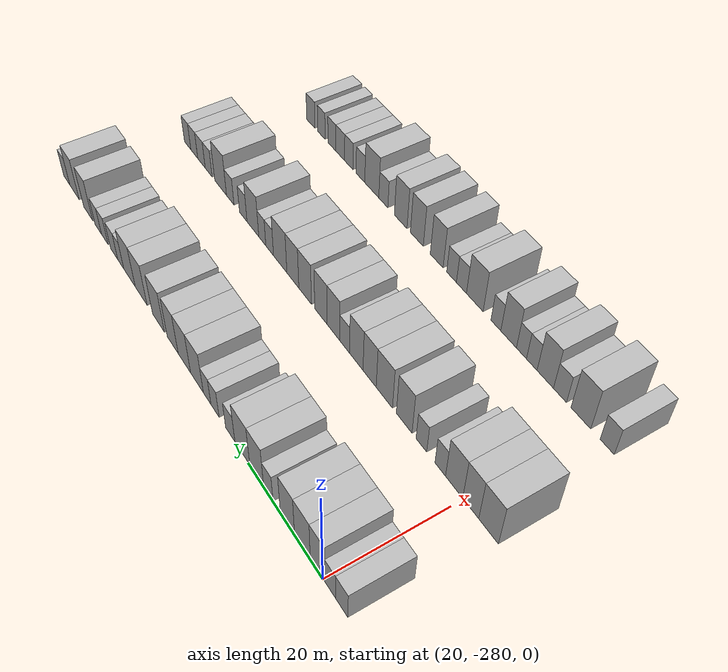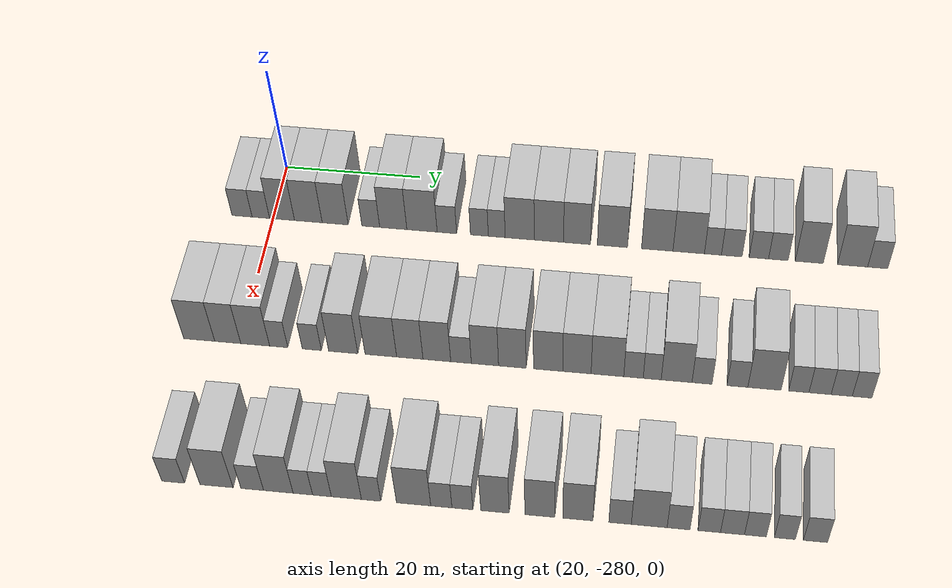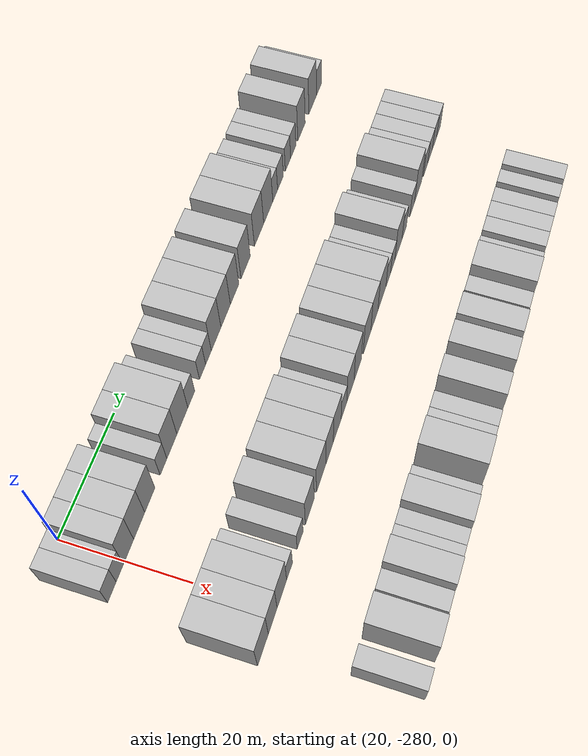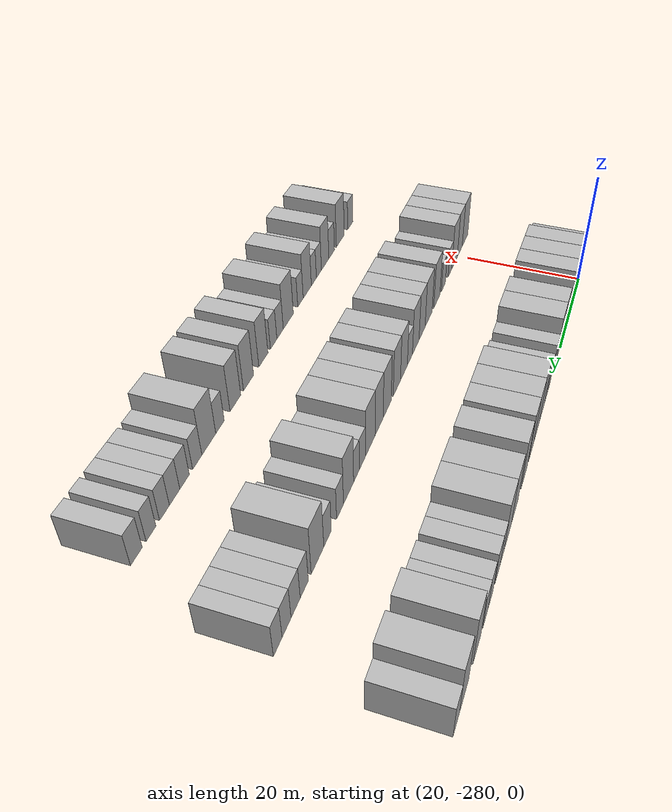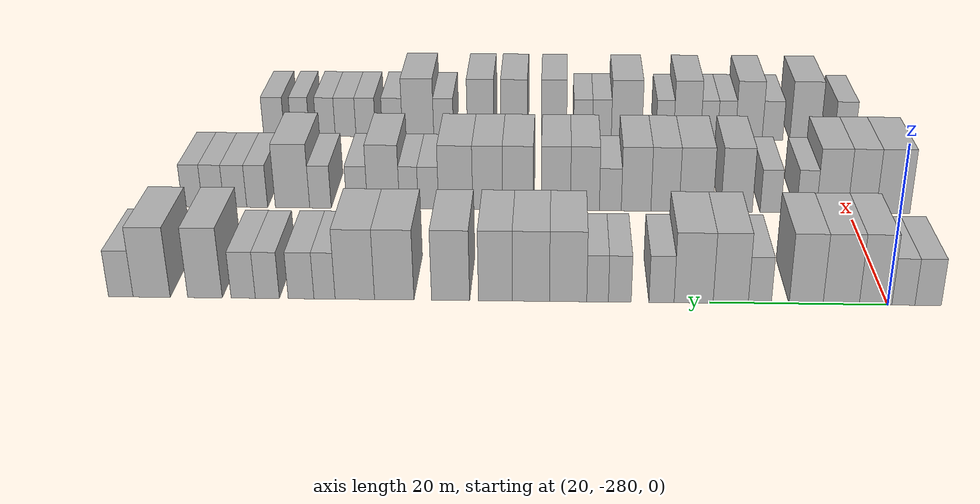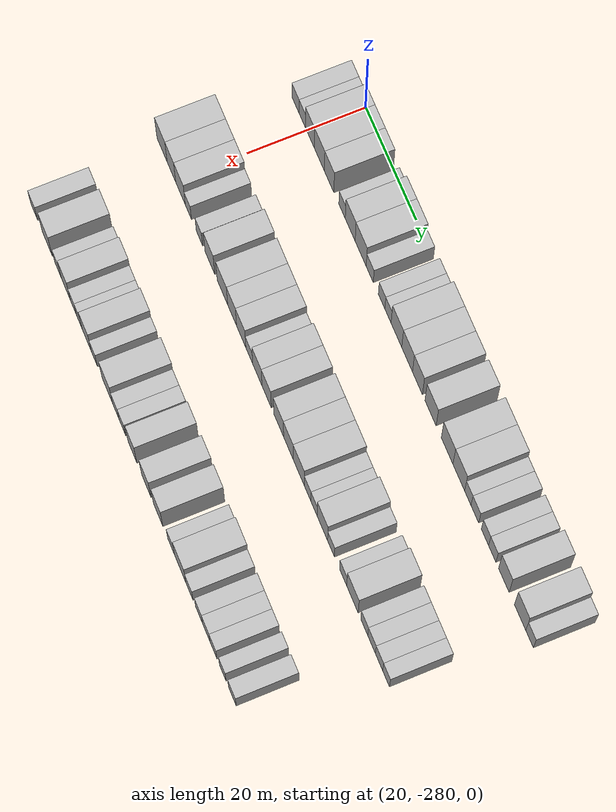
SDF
<sdf version="1.6">
 <world name="default">
  <model name="building_24">
   <static>1</static>
   <pose>25.0000 -284.5112 0 0.000000 0.000000 0.000000</pose>
   <link name="link">
    <pose>0 0 3.00 0 0 0</pose>
    <collision name="collision"><geometry><box><size>10.0000 2.9608 6.0000</size></box></geometry></collision>
    <visual name="visual">
     <cast_shadows>0</cast_shadows>
     <geometry><box><size>10.0000 2.9608 6.0000</size></box></geometry>
     <material>
      <script>
       <uri>model://HANNAS_wall/materials/scripts</uri>
       <uri>model://HANNAS_wall/materials/textures</uri>
       <name>vrc/HANNAS_wall</name>
      </script>
     </material>
    </visual>
   </link>
  </model>
  <model name="building_25">
   <static>1</static>
   <pose>25.0000 -281.7417 0 0.000000 0.000000 0.000000</pose>
   <link name="link">
    <pose>0 0 3.00 0 0 0</pose>
    <collision name="collision"><geometry><box><size>10.0000 2.5782 6.0000</size></box></geometry></collision>
    <visual name="visual">
     <cast_shadows>0</cast_shadows>
     <geometry><box><size>10.0000 2.5782 6.0000</size></box></geometry>
     <material>
      <script>
       <uri>model://HANNAS_wall/materials/scripts</uri>
       <uri>model://HANNAS_wall/materials/textures</uri>
       <name>vrc/HANNAS_wall</name>
      </script>
     </material>
    </visual>
   </link>
  </model>
  <model name="building_26">
   <static>1</static>
   <pose>25.0000 -278.6210 0 0.000000 0.000000 0.000000</pose>
   <link name="link">
    <pose>0 0 4.50 0 0 0</pose>
    <collision name="collision"><geometry><box><size>10.0000 3.6632 9.0000</size></box></geometry></collision>
    <visual name="visual">
     <cast_shadows>0</cast_shadows>
     <geometry><box><size>10.0000 3.6632 9.0000</size></box></geometry>
     <material>
      <script>
       <uri>model://HANNAS_wall/materials/scripts</uri>
       <uri>model://HANNAS_wall/materials/textures</uri>
       <name>vrc/HANNAS_wall</name>
      </script>
     </material>
    </visual>
   </link>
  </model>
  <model name="building_27">
   <static>1</static>
   <pose>25.0000 -274.7583 0 0.000000 0.000000 0.000000</pose>
   <link name="link">
    <pose>0 0 4.50 0 0 0</pose>
    <collision name="collision"><geometry><box><size>10.0000 4.0623 9.0000</size></box></geometry></collision>
    <visual name="visual">
     <cast_shadows>0</cast_shadows>
     <geometry><box><size>10.0000 4.0623 9.0000</size></box></geometry>
     <material>
      <script>
       <uri>model://HANNAS_wall/materials/scripts</uri>
       <uri>model://HANNAS_wall/materials/textures</uri>
       <name>vrc/HANNAS_wall</name>
      </script>
     </material>
    </visual>
   </link>
  </model>
  <model name="building_28">
   <static>1</static>
   <pose>25.0000 -270.8224 0 0.000000 0.000000 0.000000</pose>
   <link name="link">
    <pose>0 0 4.50 0 0 0</pose>
    <collision name="collision"><geometry><box><size>10.0000 3.8095 9.0000</size></box></geometry></collision>
    <visual name="visual">
     <cast_shadows>0</cast_shadows>
     <geometry><box><size>10.0000 3.8095 9.0000</size></box></geometry>
     <material>
      <script>
       <uri>model://HANNAS_wall/materials/scripts</uri>
       <uri>model://HANNAS_wall/materials/textures</uri>
       <name>vrc/HANNAS_wall</name>
      </script>
     </material>
    </visual>
   </link>
  </model>
  <model name="building_29">
   <static>1</static>
   <pose>25.0000 -265.6173 0 0.000000 0.000000 0.000000</pose>
   <link name="link">
    <pose>0 0 3.00 0 0 0</pose>
    <collision name="collision"><geometry><box><size>10.0000 2.6008 6.0000</size></box></geometry></collision>
    <visual name="visual">
     <cast_shadows>0</cast_shadows>
     <geometry><box><size>10.0000 2.6008 6.0000</size></box></geometry>
     <material>
      <script>
       <uri>model://HANNAS_wall/materials/scripts</uri>
       <uri>model://HANNAS_wall/materials/textures</uri>
       <name>vrc/HANNAS_wall</name>
      </script>
     </material>
    </visual>
   </link>
  </model>
  <model name="building_30">
   <static>1</static>
   <pose>25.0000 -262.3376 0 0.000000 0.000000 0.000000</pose>
   <link name="link">
    <pose>0 0 4.50 0 0 0</pose>
    <collision name="collision"><geometry><box><size>10.0000 3.9587 9.0000</size></box></geometry></collision>
    <visual name="visual">
     <cast_shadows>0</cast_shadows>
     <geometry><box><size>10.0000 3.9587 9.0000</size></box></geometry>
     <material>
      <script>
       <uri>model://HANNAS_wall/materials/scripts</uri>
       <uri>model://HANNAS_wall/materials/textures</uri>
       <name>vrc/HANNAS_wall</name>
      </script>
     </material>
    </visual>
   </link>
  </model>
  <model name="building_31">
   <static>1</static>
   <pose>25.0000 -258.1573 0 0.000000 0.000000 0.000000</pose>
   <link name="link">
    <pose>0 0 4.50 0 0 0</pose>
    <collision name="collision"><geometry><box><size>10.0000 4.4019 9.0000</size></box></geometry></collision>
    <visual name="visual">
     <cast_shadows>0</cast_shadows>
     <geometry><box><size>10.0000 4.4019 9.0000</size></box></geometry>
     <material>
      <script>
       <uri>model://HANNAS_wall/materials/scripts</uri>
       <uri>model://HANNAS_wall/materials/textures</uri>
       <name>vrc/HANNAS_wall</name>
      </script>
     </material>
    </visual>
   </link>
  </model>
  <model name="building_32">
   <static>1</static>
   <pose>25.0000 -254.5418 0 0.000000 0.000000 0.000000</pose>
   <link name="link">
    <pose>0 0 3.00 0 0 0</pose>
    <collision name="collision"><geometry><box><size>10.0000 2.8291 6.0000</size></box></geometry></collision>
    <visual name="visual">
     <cast_shadows>0</cast_shadows>
     <geometry><box><size>10.0000 2.8291 6.0000</size></box></geometry>
     <material>
      <script>
       <uri>model://HANNAS_wall/materials/scripts</uri>
       <uri>model://HANNAS_wall/materials/textures</uri>
       <name>vrc/HANNAS_wall</name>
      </script>
     </material>
    </visual>
   </link>
  </model>
  <model name="building_33">
   <static>1</static>
   <pose>25.0000 -249.8364 0 0.000000 0.000000 0.000000</pose>
   <link name="link">
    <pose>0 0 3.00 0 0 0</pose>
    <collision name="collision"><geometry><box><size>10.0000 2.5818 6.0000</size></box></geometry></collision>
    <visual name="visual">
     <cast_shadows>0</cast_shadows>
     <geometry><box><size>10.0000 2.5818 6.0000</size></box></geometry>
     <material>
      <script>
       <uri>model://HANNAS_wall/materials/scripts</uri>
       <uri>model://HANNAS_wall/materials/textures</uri>
       <name>vrc/HANNAS_wall</name>
      </script>
     </material>
    </visual>
   </link>
  </model>
  <model name="building_34">
   <static>1</static>
   <pose>25.0000 -247.3250 0 0.000000 0.000000 0.000000</pose>
   <link name="link">
    <pose>0 0 3.00 0 0 0</pose>
    <collision name="collision"><geometry><box><size>10.0000 2.4410 6.0000</size></box></geometry></collision>
    <visual name="visual">
     <cast_shadows>0</cast_shadows>
     <geometry><box><size>10.0000 2.4410 6.0000</size></box></geometry>
     <material>
      <script>
       <uri>model://HANNAS_wall/materials/scripts</uri>
       <uri>model://HANNAS_wall/materials/textures</uri>
       <name>vrc/HANNAS_wall</name>
      </script>
     </material>
    </visual>
   </link>
  </model>
  <model name="building_35">
   <static>1</static>
   <pose>25.0000 -244.0045 0 0.000000 0.000000 0.000000</pose>
   <link name="link">
    <pose>0 0 4.50 0 0 0</pose>
    <collision name="collision"><geometry><box><size>10.0000 4.1999 9.0000</size></box></geometry></collision>
    <visual name="visual">
     <cast_shadows>0</cast_shadows>
     <geometry><box><size>10.0000 4.1999 9.0000</size></box></geometry>
     <material>
      <script>
       <uri>model://HANNAS_wall/materials/scripts</uri>
       <uri>model://HANNAS_wall/materials/textures</uri>
       <name>vrc/HANNAS_wall</name>
      </script>
     </material>
    </visual>
   </link>
  </model>
  <model name="building_36">
   <static>1</static>
   <pose>25.0000 -239.8030 0 0.000000 0.000000 0.000000</pose>
   <link name="link">
    <pose>0 0 4.50 0 0 0</pose>
    <collision name="collision"><geometry><box><size>10.0000 4.2031 9.0000</size></box></geometry></collision>
    <visual name="visual">
     <cast_shadows>0</cast_shadows>
     <geometry><box><size>10.0000 4.2031 9.0000</size></box></geometry>
     <material>
      <script>
       <uri>model://HANNAS_wall/materials/scripts</uri>
       <uri>model://HANNAS_wall/materials/textures</uri>
       <name>vrc/HANNAS_wall</name>
      </script>
     </material>
    </visual>
   </link>
  </model>
  <model name="building_37">
   <static>1</static>
   <pose>25.0000 -235.7742 0 0.000000 0.000000 0.000000</pose>
   <link name="link">
    <pose>0 0 4.50 0 0 0</pose>
    <collision name="collision"><geometry><box><size>10.0000 3.8545 9.0000</size></box></geometry></collision>
    <visual name="visual">
     <cast_shadows>0</cast_shadows>
     <geometry><box><size>10.0000 3.8545 9.0000</size></box></geometry>
     <material>
      <script>
       <uri>model://HANNAS_wall/materials/scripts</uri>
       <uri>model://HANNAS_wall/materials/textures</uri>
       <name>vrc/HANNAS_wall</name>
      </script>
     </material>
    </visual>
   </link>
  </model>
  <model name="building_38">
   <static>1</static>
   <pose>25.0000 -230.6868 0 0.000000 0.000000 0.000000</pose>
   <link name="link">
    <pose>0 0 4.50 0 0 0</pose>
    <collision name="collision"><geometry><box><size>10.0000 4.3202 9.0000</size></box></geometry></collision>
    <visual name="visual">
     <cast_shadows>0</cast_shadows>
     <geometry><box><size>10.0000 4.3202 9.0000</size></box></geometry>
     <material>
      <script>
       <uri>model://HANNAS_wall/materials/scripts</uri>
       <uri>model://HANNAS_wall/materials/textures</uri>
       <name>vrc/HANNAS_wall</name>
      </script>
     </material>
    </visual>
   </link>
  </model>
  <model name="building_39">
   <static>1</static>
   <pose>25.0000 -224.2855 0 0.000000 0.000000 0.000000</pose>
   <link name="link">
    <pose>0 0 4.50 0 0 0</pose>
    <collision name="collision"><geometry><box><size>10.0000 4.4824 9.0000</size></box></geometry></collision>
    <visual name="visual">
     <cast_shadows>0</cast_shadows>
     <geometry><box><size>10.0000 4.4824 9.0000</size></box></geometry>
     <material>
      <script>
       <uri>model://HANNAS_wall/materials/scripts</uri>
       <uri>model://HANNAS_wall/materials/textures</uri>
       <name>vrc/HANNAS_wall</name>
      </script>
     </material>
    </visual>
   </link>
  </model>
  <model name="building_40">
   <static>1</static>
   <pose>25.0000 -219.8052 0 0.000000 0.000000 0.000000</pose>
   <link name="link">
    <pose>0 0 4.50 0 0 0</pose>
    <collision name="collision"><geometry><box><size>10.0000 4.4782 9.0000</size></box></geometry></collision>
    <visual name="visual">
     <cast_shadows>0</cast_shadows>
     <geometry><box><size>10.0000 4.4782 9.0000</size></box></geometry>
     <material>
      <script>
       <uri>model://HANNAS_wall/materials/scripts</uri>
       <uri>model://HANNAS_wall/materials/textures</uri>
       <name>vrc/HANNAS_wall</name>
      </script>
     </material>
    </visual>
   </link>
  </model>
  <model name="building_41">
   <static>1</static>
   <pose>25.0000 -216.3592 0 0.000000 0.000000 0.000000</pose>
   <link name="link">
    <pose>0 0 3.00 0 0 0</pose>
    <collision name="collision"><geometry><box><size>10.0000 2.4140 6.0000</size></box></geometry></collision>
    <visual name="visual">
     <cast_shadows>0</cast_shadows>
     <geometry><box><size>10.0000 2.4140 6.0000</size></box></geometry>
     <material>
      <script>
       <uri>model://HANNAS_wall/materials/scripts</uri>
       <uri>model://HANNAS_wall/materials/textures</uri>
       <name>vrc/HANNAS_wall</name>
      </script>
     </material>
    </visual>
   </link>
  </model>
  <model name="building_42">
   <static>1</static>
   <pose>25.0000 -213.6833 0 0.000000 0.000000 0.000000</pose>
   <link name="link">
    <pose>0 0 3.00 0 0 0</pose>
    <collision name="collision"><geometry><box><size>10.0000 2.9378 6.0000</size></box></geometry></collision>
    <visual name="visual">
     <cast_shadows>0</cast_shadows>
     <geometry><box><size>10.0000 2.9378 6.0000</size></box></geometry>
     <material>
      <script>
       <uri>model://HANNAS_wall/materials/scripts</uri>
       <uri>model://HANNAS_wall/materials/textures</uri>
       <name>vrc/HANNAS_wall</name>
      </script>
     </material>
    </visual>
   </link>
  </model>
  <model name="building_43">
   <static>1</static>
   <pose>25.0000 -209.8411 0 0.000000 0.000000 0.000000</pose>
   <link name="link">
    <pose>0 0 3.00 0 0 0</pose>
    <collision name="collision"><geometry><box><size>10.0000 2.7466 6.0000</size></box></geometry></collision>
    <visual name="visual">
     <cast_shadows>0</cast_shadows>
     <geometry><box><size>10.0000 2.7466 6.0000</size></box></geometry>
     <material>
      <script>
       <uri>model://HANNAS_wall/materials/scripts</uri>
       <uri>model://HANNAS_wall/materials/textures</uri>
       <name>vrc/HANNAS_wall</name>
      </script>
     </material>
    </visual>
   </link>
  </model>
  <model name="building_44">
   <static>1</static>
   <pose>25.0000 -207.0840 0 0.000000 0.000000 0.000000</pose>
   <link name="link">
    <pose>0 0 3.00 0 0 0</pose>
    <collision name="collision"><geometry><box><size>10.0000 2.7675 6.0000</size></box></geometry></collision>
    <visual name="visual">
     <cast_shadows>0</cast_shadows>
     <geometry><box><size>10.0000 2.7675 6.0000</size></box></geometry>
     <material>
      <script>
       <uri>model://HANNAS_wall/materials/scripts</uri>
       <uri>model://HANNAS_wall/materials/textures</uri>
       <name>vrc/HANNAS_wall</name>
      </script>
     </material>
    </visual>
   </link>
  </model>
  <model name="building_45">
   <static>1</static>
   <pose>25.0000 -202.7225 0 0.000000 0.000000 0.000000</pose>
   <link name="link">
    <pose>0 0 4.50 0 0 0</pose>
    <collision name="collision"><geometry><box><size>10.0000 3.9555 9.0000</size></box></geometry></collision>
    <visual name="visual">
     <cast_shadows>0</cast_shadows>
     <geometry><box><size>10.0000 3.9555 9.0000</size></box></geometry>
     <material>
      <script>
       <uri>model://HANNAS_wall/materials/scripts</uri>
       <uri>model://HANNAS_wall/materials/textures</uri>
       <name>vrc/HANNAS_wall</name>
      </script>
     </material>
    </visual>
   </link>
  </model>
  <model name="building_46">
   <static>1</static>
   <pose>25.0000 -196.6248 0 0.000000 0.000000 0.000000</pose>
   <link name="link">
    <pose>0 0 4.50 0 0 0</pose>
    <collision name="collision"><geometry><box><size>10.0000 4.2398 9.0000</size></box></geometry></collision>
    <visual name="visual">
     <cast_shadows>0</cast_shadows>
     <geometry><box><size>10.0000 4.2398 9.0000</size></box></geometry>
     <material>
      <script>
       <uri>model://HANNAS_wall/materials/scripts</uri>
       <uri>model://HANNAS_wall/materials/textures</uri>
       <name>vrc/HANNAS_wall</name>
      </script>
     </material>
    </visual>
   </link>
  </model>
  <model name="building_47">
   <static>1</static>
   <pose>25.0000 -193.0950 0 0.000000 0.000000 0.000000</pose>
   <link name="link">
    <pose>0 0 3.00 0 0 0</pose>
    <collision name="collision"><geometry><box><size>10.0000 2.8199 6.0000</size></box></geometry></collision>
    <visual name="visual">
     <cast_shadows>0</cast_shadows>
     <geometry><box><size>10.0000 2.8199 6.0000</size></box></geometry>
     <material>
      <script>
       <uri>model://HANNAS_wall/materials/scripts</uri>
       <uri>model://HANNAS_wall/materials/textures</uri>
       <name>vrc/HANNAS_wall</name>
      </script>
     </material>
    </visual>
   </link>
  </model>
  <model name="building_219">
   <static>1</static>
   <pose>47.0000 -285.5213 0 0.000000 0.000000 0.000000</pose>
   <link name="link">
    <pose>0 0 4.50 0 0 0</pose>
    <collision name="collision"><geometry><box><size>10.0000 4.2971 9.0000</size></box></geometry></collision>
    <visual name="visual">
     <cast_shadows>0</cast_shadows>
     <geometry><box><size>10.0000 4.2971 9.0000</size></box></geometry>
     <material>
      <script>
       <uri>model://HANNAS_wall/materials/scripts</uri>
       <uri>model://HANNAS_wall/materials/textures</uri>
       <name>vrc/HANNAS_wall</name>
      </script>
     </material>
    </visual>
   </link>
  </model>
  <model name="building_220">
   <static>1</static>
   <pose>47.0000 -281.5662 0 0.000000 0.000000 0.000000</pose>
   <link name="link">
    <pose>0 0 4.50 0 0 0</pose>
    <collision name="collision"><geometry><box><size>10.0000 3.6130 9.0000</size></box></geometry></collision>
    <visual name="visual">
     <cast_shadows>0</cast_shadows>
     <geometry><box><size>10.0000 3.6130 9.0000</size></box></geometry>
     <material>
      <script>
       <uri>model://HANNAS_wall/materials/scripts</uri>
       <uri>model://HANNAS_wall/materials/textures</uri>
       <name>vrc/HANNAS_wall</name>
      </script>
     </material>
    </visual>
   </link>
  </model>
  <model name="building_221">
   <static>1</static>
   <pose>47.0000 -277.7630 0 0.000000 0.000000 0.000000</pose>
   <link name="link">
    <pose>0 0 4.50 0 0 0</pose>
    <collision name="collision"><geometry><box><size>10.0000 3.9935 9.0000</size></box></geometry></collision>
    <visual name="visual">
     <cast_shadows>0</cast_shadows>
     <geometry><box><size>10.0000 3.9935 9.0000</size></box></geometry>
     <material>
      <script>
       <uri>model://HANNAS_wall/materials/scripts</uri>
       <uri>model://HANNAS_wall/materials/textures</uri>
       <name>vrc/HANNAS_wall</name>
      </script>
     </material>
    </visual>
   </link>
  </model>
  <model name="building_222">
   <static>1</static>
   <pose>47.0000 -274.5074 0 0.000000 0.000000 0.000000</pose>
   <link name="link">
    <pose>0 0 3.00 0 0 0</pose>
    <collision name="collision"><geometry><box><size>10.0000 2.5177 6.0000</size></box></geometry></collision>
    <visual name="visual">
     <cast_shadows>0</cast_shadows>
     <geometry><box><size>10.0000 2.5177 6.0000</size></box></geometry>
     <material>
      <script>
       <uri>model://HANNAS_wall/materials/scripts</uri>
       <uri>model://HANNAS_wall/materials/textures</uri>
       <name>vrc/HANNAS_wall</name>
      </script>
     </material>
    </visual>
   </link>
  </model>
  <model name="building_223">
   <static>1</static>
   <pose>47.0000 -269.9336 0 0.000000 0.000000 0.000000</pose>
   <link name="link">
    <pose>0 0 3.00 0 0 0</pose>
    <collision name="collision"><geometry><box><size>10.0000 2.6299 6.0000</size></box></geometry></collision>
    <visual name="visual">
     <cast_shadows>0</cast_shadows>
     <geometry><box><size>10.0000 2.6299 6.0000</size></box></geometry>
     <material>
      <script>
       <uri>model://HANNAS_wall/materials/scripts</uri>
       <uri>model://HANNAS_wall/materials/textures</uri>
       <name>vrc/HANNAS_wall</name>
      </script>
     </material>
    </visual>
   </link>
  </model>
  <model name="building_224">
   <static>1</static>
   <pose>47.0000 -265.6131 0 0.000000 0.000000 0.000000</pose>
   <link name="link">
    <pose>0 0 4.50 0 0 0</pose>
    <collision name="collision"><geometry><box><size>10.0000 4.0112 9.0000</size></box></geometry></collision>
    <visual name="visual">
     <cast_shadows>0</cast_shadows>
     <geometry><box><size>10.0000 4.0112 9.0000</size></box></geometry>
     <material>
      <script>
       <uri>model://HANNAS_wall/materials/scripts</uri>
       <uri>model://HANNAS_wall/materials/textures</uri>
       <name>vrc/HANNAS_wall</name>
      </script>
     </material>
    </visual>
   </link>
  </model>
  <model name="building_225">
   <static>1</static>
   <pose>47.0000 -260.4445 0 0.000000 0.000000 0.000000</pose>
   <link name="link">
    <pose>0 0 4.50 0 0 0</pose>
    <collision name="collision"><geometry><box><size>10.0000 4.3259 9.0000</size></box></geometry></collision>
    <visual name="visual">
     <cast_shadows>0</cast_shadows>
     <geometry><box><size>10.0000 4.3259 9.0000</size></box></geometry>
     <material>
      <script>
       <uri>model://HANNAS_wall/materials/scripts</uri>
       <uri>model://HANNAS_wall/materials/textures</uri>
       <name>vrc/HANNAS_wall</name>
      </script>
     </material>
    </visual>
   </link>
  </model>
  <model name="building_226">
   <static>1</static>
   <pose>47.0000 -256.4762 0 0.000000 0.000000 0.000000</pose>
   <link name="link">
    <pose>0 0 4.50 0 0 0</pose>
    <collision name="collision"><geometry><box><size>10.0000 3.6106 9.0000</size></box></geometry></collision>
    <visual name="visual">
     <cast_shadows>0</cast_shadows>
     <geometry><box><size>10.0000 3.6106 9.0000</size></box></geometry>
     <material>
      <script>
       <uri>model://HANNAS_wall/materials/scripts</uri>
       <uri>model://HANNAS_wall/materials/textures</uri>
       <name>vrc/HANNAS_wall</name>
      </script>
     </material>
    </visual>
   </link>
  </model>
  <model name="building_227">
   <static>1</static>
   <pose>47.0000 -252.7790 0 0.000000 0.000000 0.000000</pose>
   <link name="link">
    <pose>0 0 4.50 0 0 0</pose>
    <collision name="collision"><geometry><box><size>10.0000 3.7838 9.0000</size></box></geometry></collision>
    <visual name="visual">
     <cast_shadows>0</cast_shadows>
     <geometry><box><size>10.0000 3.7838 9.0000</size></box></geometry>
     <material>
      <script>
       <uri>model://HANNAS_wall/materials/scripts</uri>
       <uri>model://HANNAS_wall/materials/textures</uri>
       <name>vrc/HANNAS_wall</name>
      </script>
     </material>
    </visual>
   </link>
  </model>
  <model name="building_228">
   <static>1</static>
   <pose>47.0000 -249.4849 0 0.000000 0.000000 0.000000</pose>
   <link name="link">
    <pose>0 0 3.00 0 0 0</pose>
    <collision name="collision"><geometry><box><size>10.0000 2.8044 6.0000</size></box></geometry></collision>
    <visual name="visual">
     <cast_shadows>0</cast_shadows>
     <geometry><box><size>10.0000 2.8044 6.0000</size></box></geometry>
     <material>
      <script>
       <uri>model://HANNAS_wall/materials/scripts</uri>
       <uri>model://HANNAS_wall/materials/textures</uri>
       <name>vrc/HANNAS_wall</name>
      </script>
     </material>
    </visual>
   </link>
  </model>
  <model name="building_229">
   <static>1</static>
   <pose>47.0000 -246.2335 0 0.000000 0.000000 0.000000</pose>
   <link name="link">
    <pose>0 0 4.50 0 0 0</pose>
    <collision name="collision"><geometry><box><size>10.0000 3.6983 9.0000</size></box></geometry></collision>
    <visual name="visual">
     <cast_shadows>0</cast_shadows>
     <geometry><box><size>10.0000 3.6983 9.0000</size></box></geometry>
     <material>
      <script>
       <uri>model://HANNAS_wall/materials/scripts</uri>
       <uri>model://HANNAS_wall/materials/textures</uri>
       <name>vrc/HANNAS_wall</name>
      </script>
     </material>
    </visual>
   </link>
  </model>
  <model name="building_230">
   <static>1</static>
   <pose>47.0000 -242.5132 0 0.000000 0.000000 0.000000</pose>
   <link name="link">
    <pose>0 0 4.50 0 0 0</pose>
    <collision name="collision"><geometry><box><size>10.0000 3.7424 9.0000</size></box></geometry></collision>
    <visual name="visual">
     <cast_shadows>0</cast_shadows>
     <geometry><box><size>10.0000 3.7424 9.0000</size></box></geometry>
     <material>
      <script>
       <uri>model://HANNAS_wall/materials/scripts</uri>
       <uri>model://HANNAS_wall/materials/textures</uri>
       <name>vrc/HANNAS_wall</name>
      </script>
     </material>
    </visual>
   </link>
  </model>
  <model name="building_231">
   <static>1</static>
   <pose>47.0000 -237.6683 0 0.000000 0.000000 0.000000</pose>
   <link name="link">
    <pose>0 0 4.50 0 0 0</pose>
    <collision name="collision"><geometry><box><size>10.0000 3.9474 9.0000</size></box></geometry></collision>
    <visual name="visual">
     <cast_shadows>0</cast_shadows>
     <geometry><box><size>10.0000 3.9474 9.0000</size></box></geometry>
     <material>
      <script>
       <uri>model://HANNAS_wall/materials/scripts</uri>
       <uri>model://HANNAS_wall/materials/textures</uri>
       <name>vrc/HANNAS_wall</name>
      </script>
     </material>
    </visual>
   </link>
  </model>
  <model name="building_232">
   <static>1</static>
   <pose>47.0000 -233.7779 0 0.000000 0.000000 0.000000</pose>
   <link name="link">
    <pose>0 0 4.50 0 0 0</pose>
    <collision name="collision"><geometry><box><size>10.0000 3.8333 9.0000</size></box></geometry></collision>
    <visual name="visual">
     <cast_shadows>0</cast_shadows>
     <geometry><box><size>10.0000 3.8333 9.0000</size></box></geometry>
     <material>
      <script>
       <uri>model://HANNAS_wall/materials/scripts</uri>
       <uri>model://HANNAS_wall/materials/textures</uri>
       <name>vrc/HANNAS_wall</name>
      </script>
     </material>
    </visual>
   </link>
  </model>
  <model name="building_233">
   <static>1</static>
   <pose>47.0000 -229.6621 0 0.000000 0.000000 0.000000</pose>
   <link name="link">
    <pose>0 0 4.50 0 0 0</pose>
    <collision name="collision"><geometry><box><size>10.0000 4.3983 9.0000</size></box></geometry></collision>
    <visual name="visual">
     <cast_shadows>0</cast_shadows>
     <geometry><box><size>10.0000 4.3983 9.0000</size></box></geometry>
     <material>
      <script>
       <uri>model://HANNAS_wall/materials/scripts</uri>
       <uri>model://HANNAS_wall/materials/textures</uri>
       <name>vrc/HANNAS_wall</name>
      </script>
     </material>
    </visual>
   </link>
  </model>
  <model name="building_234">
   <static>1</static>
   <pose>47.0000 -226.1576 0 0.000000 0.000000 0.000000</pose>
   <link name="link">
    <pose>0 0 3.00 0 0 0</pose>
    <collision name="collision"><geometry><box><size>10.0000 2.6108 6.0000</size></box></geometry></collision>
    <visual name="visual">
     <cast_shadows>0</cast_shadows>
     <geometry><box><size>10.0000 2.6108 6.0000</size></box></geometry>
     <material>
      <script>
       <uri>model://HANNAS_wall/materials/scripts</uri>
       <uri>model://HANNAS_wall/materials/textures</uri>
       <name>vrc/HANNAS_wall</name>
      </script>
     </material>
    </visual>
   </link>
  </model>
  <model name="building_235">
   <static>1</static>
   <pose>47.0000 -223.6484 0 0.000000 0.000000 0.000000</pose>
   <link name="link">
    <pose>0 0 3.00 0 0 0</pose>
    <collision name="collision"><geometry><box><size>10.0000 2.4076 6.0000</size></box></geometry></collision>
    <visual name="visual">
     <cast_shadows>0</cast_shadows>
     <geometry><box><size>10.0000 2.4076 6.0000</size></box></geometry>
     <material>
      <script>
       <uri>model://HANNAS_wall/materials/scripts</uri>
       <uri>model://HANNAS_wall/materials/textures</uri>
       <name>vrc/HANNAS_wall</name>
      </script>
     </material>
    </visual>
   </link>
  </model>
  <model name="building_236">
   <static>1</static>
   <pose>47.0000 -220.3797 0 0.000000 0.000000 0.000000</pose>
   <link name="link">
    <pose>0 0 4.50 0 0 0</pose>
    <collision name="collision"><geometry><box><size>10.0000 4.1298 9.0000</size></box></geometry></collision>
    <visual name="visual">
     <cast_shadows>0</cast_shadows>
     <geometry><box><size>10.0000 4.1298 9.0000</size></box></geometry>
     <material>
      <script>
       <uri>model://HANNAS_wall/materials/scripts</uri>
       <uri>model://HANNAS_wall/materials/textures</uri>
       <name>vrc/HANNAS_wall</name>
      </script>
     </material>
    </visual>
   </link>
  </model>
  <model name="building_237">
   <static>1</static>
   <pose>47.0000 -216.9745 0 0.000000 0.000000 0.000000</pose>
   <link name="link">
    <pose>0 0 3.00 0 0 0</pose>
    <collision name="collision"><geometry><box><size>10.0000 2.6805 6.0000</size></box></geometry></collision>
    <visual name="visual">
     <cast_shadows>0</cast_shadows>
     <geometry><box><size>10.0000 2.6805 6.0000</size></box></geometry>
     <material>
      <script>
       <uri>model://HANNAS_wall/materials/scripts</uri>
       <uri>model://HANNAS_wall/materials/textures</uri>
       <name>vrc/HANNAS_wall</name>
      </script>
     </material>
    </visual>
   </link>
  </model>
  <model name="building_238">
   <static>1</static>
   <pose>47.0000 -212.2490 0 0.000000 0.000000 0.000000</pose>
   <link name="link">
    <pose>0 0 3.00 0 0 0</pose>
    <collision name="collision"><geometry><box><size>10.0000 2.7706 6.0000</size></box></geometry></collision>
    <visual name="visual">
     <cast_shadows>0</cast_shadows>
     <geometry><box><size>10.0000 2.7706 6.0000</size></box></geometry>
     <material>
      <script>
       <uri>model://HANNAS_wall/materials/scripts</uri>
       <uri>model://HANNAS_wall/materials/textures</uri>
       <name>vrc/HANNAS_wall</name>
      </script>
     </material>
    </visual>
   </link>
  </model>
  <model name="building_239">
   <static>1</static>
   <pose>47.0000 -208.6467 0 0.000000 0.000000 0.000000</pose>
   <link name="link">
    <pose>0 0 4.50 0 0 0</pose>
    <collision name="collision"><geometry><box><size>10.0000 4.4338 9.0000</size></box></geometry></collision>
    <visual name="visual">
     <cast_shadows>0</cast_shadows>
     <geometry><box><size>10.0000 4.4338 9.0000</size></box></geometry>
     <material>
      <script>
       <uri>model://HANNAS_wall/materials/scripts</uri>
       <uri>model://HANNAS_wall/materials/textures</uri>
       <name>vrc/HANNAS_wall</name>
      </script>
     </material>
    </visual>
   </link>
  </model>
  <model name="building_240">
   <static>1</static>
   <pose>47.0000 -204.0818 0 0.000000 0.000000 0.000000</pose>
   <link name="link">
    <pose>0 0 3.00 0 0 0</pose>
    <collision name="collision"><geometry><box><size>10.0000 2.6959 6.0000</size></box></geometry></collision>
    <visual name="visual">
     <cast_shadows>0</cast_shadows>
     <geometry><box><size>10.0000 2.6959 6.0000</size></box></geometry>
     <material>
      <script>
       <uri>model://HANNAS_wall/materials/scripts</uri>
       <uri>model://HANNAS_wall/materials/textures</uri>
       <name>vrc/HANNAS_wall</name>
      </script>
     </material>
    </visual>
   </link>
  </model>
  <model name="building_241">
   <static>1</static>
   <pose>47.0000 -201.2675 0 0.000000 0.000000 0.000000</pose>
   <link name="link">
    <pose>0 0 3.00 0 0 0</pose>
    <collision name="collision"><geometry><box><size>10.0000 2.9328 6.0000</size></box></geometry></collision>
    <visual name="visual">
     <cast_shadows>0</cast_shadows>
     <geometry><box><size>10.0000 2.9328 6.0000</size></box></geometry>
     <material>
      <script>
       <uri>model://HANNAS_wall/materials/scripts</uri>
       <uri>model://HANNAS_wall/materials/textures</uri>
       <name>vrc/HANNAS_wall</name>
      </script>
     </material>
    </visual>
   </link>
  </model>
  <model name="building_242">
   <static>1</static>
   <pose>47.0000 -198.4083 0 0.000000 0.000000 0.000000</pose>
   <link name="link">
    <pose>0 0 3.00 0 0 0</pose>
    <collision name="collision"><geometry><box><size>10.0000 2.7855 6.0000</size></box></geometry></collision>
    <visual name="visual">
     <cast_shadows>0</cast_shadows>
     <geometry><box><size>10.0000 2.7855 6.0000</size></box></geometry>
     <material>
      <script>
       <uri>model://HANNAS_wall/materials/scripts</uri>
       <uri>model://HANNAS_wall/materials/textures</uri>
       <name>vrc/HANNAS_wall</name>
      </script>
     </material>
    </visual>
   </link>
  </model>
  <model name="building_243">
   <static>1</static>
   <pose>47.0000 -195.7164 0 0.000000 0.000000 0.000000</pose>
   <link name="link">
    <pose>0 0 3.00 0 0 0</pose>
    <collision name="collision"><geometry><box><size>10.0000 2.5984 6.0000</size></box></geometry></collision>
    <visual name="visual">
     <cast_shadows>0</cast_shadows>
     <geometry><box><size>10.0000 2.5984 6.0000</size></box></geometry>
     <material>
      <script>
       <uri>model://HANNAS_wall/materials/scripts</uri>
       <uri>model://HANNAS_wall/materials/textures</uri>
       <name>vrc/HANNAS_wall</name>
      </script>
     </material>
    </visual>
   </link>
  </model>
  <model name="building_408">
   <static>1</static>
   <pose>69.0000 -283.6123 0 0.000000 0.000000 0.000000</pose>
   <link name="link">
    <pose>0 0 3.00 0 0 0</pose>
    <collision name="collision"><geometry><box><size>10.0000 2.9729 6.0000</size></box></geometry></collision>
    <visual name="visual">
     <cast_shadows>0</cast_shadows>
     <geometry><box><size>10.0000 2.9729 6.0000</size></box></geometry>
     <material>
      <script>
       <uri>model://HANNAS_wall/materials/scripts</uri>
       <uri>model://HANNAS_wall/materials/textures</uri>
       <name>vrc/HANNAS_wall</name>
      </script>
     </material>
    </visual>
   </link>
  </model>
  <model name="building_409">
   <static>1</static>
   <pose>69.0000 -277.9665 0 0.000000 0.000000 0.000000</pose>
   <link name="link">
    <pose>0 0 4.50 0 0 0</pose>
    <collision name="collision"><geometry><box><size>10.0000 4.3187 9.0000</size></box></geometry></collision>
    <visual name="visual">
     <cast_shadows>0</cast_shadows>
     <geometry><box><size>10.0000 4.3187 9.0000</size></box></geometry>
     <material>
      <script>
       <uri>model://HANNAS_wall/materials/scripts</uri>
       <uri>model://HANNAS_wall/materials/textures</uri>
       <name>vrc/HANNAS_wall</name>
      </script>
     </material>
    </visual>
   </link>
  </model>
  <model name="building_410">
   <static>1</static>
   <pose>69.0000 -273.3346 0 0.000000 0.000000 0.000000</pose>
   <link name="link">
    <pose>0 0 3.00 0 0 0</pose>
    <collision name="collision"><geometry><box><size>10.0000 2.9450 6.0000</size></box></geometry></collision>
    <visual name="visual">
     <cast_shadows>0</cast_shadows>
     <geometry><box><size>10.0000 2.9450 6.0000</size></box></geometry>
     <material>
      <script>
       <uri>model://HANNAS_wall/materials/scripts</uri>
       <uri>model://HANNAS_wall/materials/textures</uri>
       <name>vrc/HANNAS_wall</name>
      </script>
     </material>
    </visual>
   </link>
  </model>
  <model name="building_411">
   <static>1</static>
   <pose>69.0000 -269.9539 0 0.000000 0.000000 0.000000</pose>
   <link name="link">
    <pose>0 0 4.50 0 0 0</pose>
    <collision name="collision"><geometry><box><size>10.0000 3.8164 9.0000</size></box></geometry></collision>
    <visual name="visual">
     <cast_shadows>0</cast_shadows>
     <geometry><box><size>10.0000 3.8164 9.0000</size></box></geometry>
     <material>
      <script>
       <uri>model://HANNAS_wall/materials/scripts</uri>
       <uri>model://HANNAS_wall/materials/textures</uri>
       <name>vrc/HANNAS_wall</name>
      </script>
     </material>
    </visual>
   </link>
  </model>
  <model name="building_412">
   <static>1</static>
   <pose>69.0000 -266.7869 0 0.000000 0.000000 0.000000</pose>
   <link name="link">
    <pose>0 0 3.00 0 0 0</pose>
    <collision name="collision"><geometry><box><size>10.0000 2.5176 6.0000</size></box></geometry></collision>
    <visual name="visual">
     <cast_shadows>0</cast_shadows>
     <geometry><box><size>10.0000 2.5176 6.0000</size></box></geometry>
     <material>
      <script>
       <uri>model://HANNAS_wall/materials/scripts</uri>
       <uri>model://HANNAS_wall/materials/textures</uri>
       <name>vrc/HANNAS_wall</name>
      </script>
     </material>
    </visual>
   </link>
  </model>
  <model name="building_413">
   <static>1</static>
   <pose>69.0000 -264.3155 0 0.000000 0.000000 0.000000</pose>
   <link name="link">
    <pose>0 0 3.00 0 0 0</pose>
    <collision name="collision"><geometry><box><size>10.0000 2.4252 6.0000</size></box></geometry></collision>
    <visual name="visual">
     <cast_shadows>0</cast_shadows>
     <geometry><box><size>10.0000 2.4252 6.0000</size></box></geometry>
     <material>
      <script>
       <uri>model://HANNAS_wall/materials/scripts</uri>
       <uri>model://HANNAS_wall/materials/textures</uri>
       <name>vrc/HANNAS_wall</name>
      </script>
     </material>
    </visual>
   </link>
  </model>
  <model name="building_414">
   <static>1</static>
   <pose>69.0000 -261.1715 0 0.000000 0.000000 0.000000</pose>
   <link name="link">
    <pose>0 0 4.50 0 0 0</pose>
    <collision name="collision"><geometry><box><size>10.0000 3.8629 9.0000</size></box></geometry></collision>
    <visual name="visual">
     <cast_shadows>0</cast_shadows>
     <geometry><box><size>10.0000 3.8629 9.0000</size></box></geometry>
     <material>
      <script>
       <uri>model://HANNAS_wall/materials/scripts</uri>
       <uri>model://HANNAS_wall/materials/textures</uri>
       <name>vrc/HANNAS_wall</name>
      </script>
     </material>
    </visual>
   </link>
  </model>
  <model name="building_415">
   <static>1</static>
   <pose>69.0000 -257.9879 0 0.000000 0.000000 0.000000</pose>
   <link name="link">
    <pose>0 0 3.00 0 0 0</pose>
    <collision name="collision"><geometry><box><size>10.0000 2.5042 6.0000</size></box></geometry></collision>
    <visual name="visual">
     <cast_shadows>0</cast_shadows>
     <geometry><box><size>10.0000 2.5042 6.0000</size></box></geometry>
     <material>
      <script>
       <uri>model://HANNAS_wall/materials/scripts</uri>
       <uri>model://HANNAS_wall/materials/textures</uri>
       <name>vrc/HANNAS_wall</name>
      </script>
     </material>
    </visual>
   </link>
  </model>
  <model name="building_416">
   <static>1</static>
   <pose>69.0000 -252.5426 0 0.000000 0.000000 0.000000</pose>
   <link name="link">
    <pose>0 0 4.50 0 0 0</pose>
    <collision name="collision"><geometry><box><size>10.0000 4.3864 9.0000</size></box></geometry></collision>
    <visual name="visual">
     <cast_shadows>0</cast_shadows>
     <geometry><box><size>10.0000 4.3864 9.0000</size></box></geometry>
     <material>
      <script>
       <uri>model://HANNAS_wall/materials/scripts</uri>
       <uri>model://HANNAS_wall/materials/textures</uri>
       <name>vrc/HANNAS_wall</name>
      </script>
     </material>
    </visual>
   </link>
  </model>
  <model name="building_417">
   <static>1</static>
   <pose>69.0000 -248.9923 0 0.000000 0.000000 0.000000</pose>
   <link name="link">
    <pose>0 0 3.00 0 0 0</pose>
    <collision name="collision"><geometry><box><size>10.0000 2.7142 6.0000</size></box></geometry></collision>
    <visual name="visual">
     <cast_shadows>0</cast_shadows>
     <geometry><box><size>10.0000 2.7142 6.0000</size></box></geometry>
     <material>
      <script>
       <uri>model://HANNAS_wall/materials/scripts</uri>
       <uri>model://HANNAS_wall/materials/textures</uri>
       <name>vrc/HANNAS_wall</name>
      </script>
     </material>
    </visual>
   </link>
  </model>
  <model name="building_418">
   <static>1</static>
   <pose>69.0000 -246.2996 0 0.000000 0.000000 0.000000</pose>
   <link name="link">
    <pose>0 0 3.00 0 0 0</pose>
    <collision name="collision"><geometry><box><size>10.0000 2.6712 6.0000</size></box></geometry></collision>
    <visual name="visual">
     <cast_shadows>0</cast_shadows>
     <geometry><box><size>10.0000 2.6712 6.0000</size></box></geometry>
     <material>
      <script>
       <uri>model://HANNAS_wall/materials/scripts</uri>
       <uri>model://HANNAS_wall/materials/textures</uri>
       <name>vrc/HANNAS_wall</name>
      </script>
     </material>
    </visual>
   </link>
  </model>
  <model name="building_419">
   <static>1</static>
   <pose>69.0000 -242.1573 0 0.000000 0.000000 0.000000</pose>
   <link name="link">
    <pose>0 0 4.50 0 0 0</pose>
    <collision name="collision"><geometry><box><size>10.0000 3.6134 9.0000</size></box></geometry></collision>
    <visual name="visual">
     <cast_shadows>0</cast_shadows>
     <geometry><box><size>10.0000 3.6134 9.0000</size></box></geometry>
     <material>
      <script>
       <uri>model://HANNAS_wall/materials/scripts</uri>
       <uri>model://HANNAS_wall/materials/textures</uri>
       <name>vrc/HANNAS_wall</name>
      </script>
     </material>
    </visual>
   </link>
  </model>
  <model name="building_420">
   <static>1</static>
   <pose>69.0000 -236.4574 0 0.000000 0.000000 0.000000</pose>
   <link name="link">
    <pose>0 0 4.50 0 0 0</pose>
    <collision name="collision"><geometry><box><size>10.0000 3.7864 9.0000</size></box></geometry></collision>
    <visual name="visual">
     <cast_shadows>0</cast_shadows>
     <geometry><box><size>10.0000 3.7864 9.0000</size></box></geometry>
     <material>
      <script>
       <uri>model://HANNAS_wall/materials/scripts</uri>
       <uri>model://HANNAS_wall/materials/textures</uri>
       <name>vrc/HANNAS_wall</name>
      </script>
     </material>
    </visual>
   </link>
  </model>
  <model name="building_421">
   <static>1</static>
   <pose>69.0000 -231.6545 0 0.000000 0.000000 0.000000</pose>
   <link name="link">
    <pose>0 0 4.50 0 0 0</pose>
    <collision name="collision"><geometry><box><size>10.0000 3.8194 9.0000</size></box></geometry></collision>
    <visual name="visual">
     <cast_shadows>0</cast_shadows>
     <geometry><box><size>10.0000 3.8194 9.0000</size></box></geometry>
     <material>
      <script>
       <uri>model://HANNAS_wall/materials/scripts</uri>
       <uri>model://HANNAS_wall/materials/textures</uri>
       <name>vrc/HANNAS_wall</name>
      </script>
     </material>
    </visual>
   </link>
  </model>
  <model name="building_422">
   <static>1</static>
   <pose>69.0000 -226.3279 0 0.000000 0.000000 0.000000</pose>
   <link name="link">
    <pose>0 0 3.00 0 0 0</pose>
    <collision name="collision"><geometry><box><size>10.0000 2.8340 6.0000</size></box></geometry></collision>
    <visual name="visual">
     <cast_shadows>0</cast_shadows>
     <geometry><box><size>10.0000 2.8340 6.0000</size></box></geometry>
     <material>
      <script>
       <uri>model://HANNAS_wall/materials/scripts</uri>
       <uri>model://HANNAS_wall/materials/textures</uri>
       <name>vrc/HANNAS_wall</name>
      </script>
     </material>
    </visual>
   </link>
  </model>
  <model name="building_423">
   <static>1</static>
   <pose>69.0000 -222.6635 0 0.000000 0.000000 0.000000</pose>
   <link name="link">
    <pose>0 0 4.50 0 0 0</pose>
    <collision name="collision"><geometry><box><size>10.0000 4.4946 9.0000</size></box></geometry></collision>
    <visual name="visual">
     <cast_shadows>0</cast_shadows>
     <geometry><box><size>10.0000 4.4946 9.0000</size></box></geometry>
     <material>
      <script>
       <uri>model://HANNAS_wall/materials/scripts</uri>
       <uri>model://HANNAS_wall/materials/textures</uri>
       <name>vrc/HANNAS_wall</name>
      </script>
     </material>
    </visual>
   </link>
  </model>
  <model name="building_424">
   <static>1</static>
   <pose>69.0000 -218.9824 0 0.000000 0.000000 0.000000</pose>
   <link name="link">
    <pose>0 0 3.00 0 0 0</pose>
    <collision name="collision"><geometry><box><size>10.0000 2.8676 6.0000</size></box></geometry></collision>
    <visual name="visual">
     <cast_shadows>0</cast_shadows>
     <geometry><box><size>10.0000 2.8676 6.0000</size></box></geometry>
     <material>
      <script>
       <uri>model://HANNAS_wall/materials/scripts</uri>
       <uri>model://HANNAS_wall/materials/textures</uri>
       <name>vrc/HANNAS_wall</name>
      </script>
     </material>
    </visual>
   </link>
  </model>
  <model name="building_425">
   <static>1</static>
   <pose>69.0000 -215.1374 0 0.000000 0.000000 0.000000</pose>
   <link name="link">
    <pose>0 0 3.00 0 0 0</pose>
    <collision name="collision"><geometry><box><size>10.0000 2.8225 6.0000</size></box></geometry></collision>
    <visual name="visual">
     <cast_shadows>0</cast_shadows>
     <geometry><box><size>10.0000 2.8225 6.0000</size></box></geometry>
     <material>
      <script>
       <uri>model://HANNAS_wall/materials/scripts</uri>
       <uri>model://HANNAS_wall/materials/textures</uri>
       <name>vrc/HANNAS_wall</name>
      </script>
     </material>
    </visual>
   </link>
  </model>
  <model name="building_426">
   <static>1</static>
   <pose>69.0000 -212.2327 0 0.000000 0.000000 0.000000</pose>
   <link name="link">
    <pose>0 0 3.00 0 0 0</pose>
    <collision name="collision"><geometry><box><size>10.0000 2.9869 6.0000</size></box></geometry></collision>
    <visual name="visual">
     <cast_shadows>0</cast_shadows>
     <geometry><box><size>10.0000 2.9869 6.0000</size></box></geometry>
     <material>
      <script>
       <uri>model://HANNAS_wall/materials/scripts</uri>
       <uri>model://HANNAS_wall/materials/textures</uri>
       <name>vrc/HANNAS_wall</name>
      </script>
     </material>
    </visual>
   </link>
  </model>
  <model name="building_427">
   <static>1</static>
   <pose>69.0000 -209.3803 0 0.000000 0.000000 0.000000</pose>
   <link name="link">
    <pose>0 0 3.00 0 0 0</pose>
    <collision name="collision"><geometry><box><size>10.0000 2.7179 6.0000</size></box></geometry></collision>
    <visual name="visual">
     <cast_shadows>0</cast_shadows>
     <geometry><box><size>10.0000 2.7179 6.0000</size></box></geometry>
     <material>
      <script>
       <uri>model://HANNAS_wall/materials/scripts</uri>
       <uri>model://HANNAS_wall/materials/textures</uri>
       <name>vrc/HANNAS_wall</name>
      </script>
     </material>
    </visual>
   </link>
  </model>
  <model name="building_428">
   <static>1</static>
   <pose>69.0000 -205.7135 0 0.000000 0.000000 0.000000</pose>
   <link name="link">
    <pose>0 0 3.00 0 0 0</pose>
    <collision name="collision"><geometry><box><size>10.0000 2.6156 6.0000</size></box></geometry></collision>
    <visual name="visual">
     <cast_shadows>0</cast_shadows>
     <geometry><box><size>10.0000 2.6156 6.0000</size></box></geometry>
     <material>
      <script>
       <uri>model://HANNAS_wall/materials/scripts</uri>
       <uri>model://HANNAS_wall/materials/textures</uri>
       <name>vrc/HANNAS_wall</name>
      </script>
     </material>
    </visual>
   </link>
  </model>
  <model name="building_429">
   <static>1</static>
   <pose>69.0000 -201.9093 0 0.000000 0.000000 0.000000</pose>
   <link name="link">
    <pose>0 0 3.00 0 0 0</pose>
    <collision name="collision"><geometry><box><size>10.0000 2.9928 6.0000</size></box></geometry></collision>
    <visual name="visual">
     <cast_shadows>0</cast_shadows>
     <geometry><box><size>10.0000 2.9928 6.0000</size></box></geometry>
     <material>
      <script>
       <uri>model://HANNAS_wall/materials/scripts</uri>
       <uri>model://HANNAS_wall/materials/textures</uri>
       <name>vrc/HANNAS_wall</name>
      </script>
     </material>
    </visual>
   </link>
  </model>
 </world>
</sdf>
